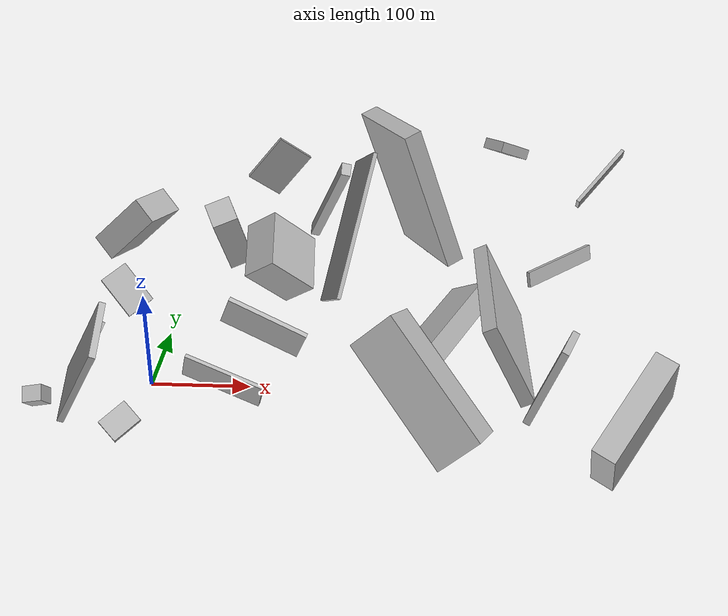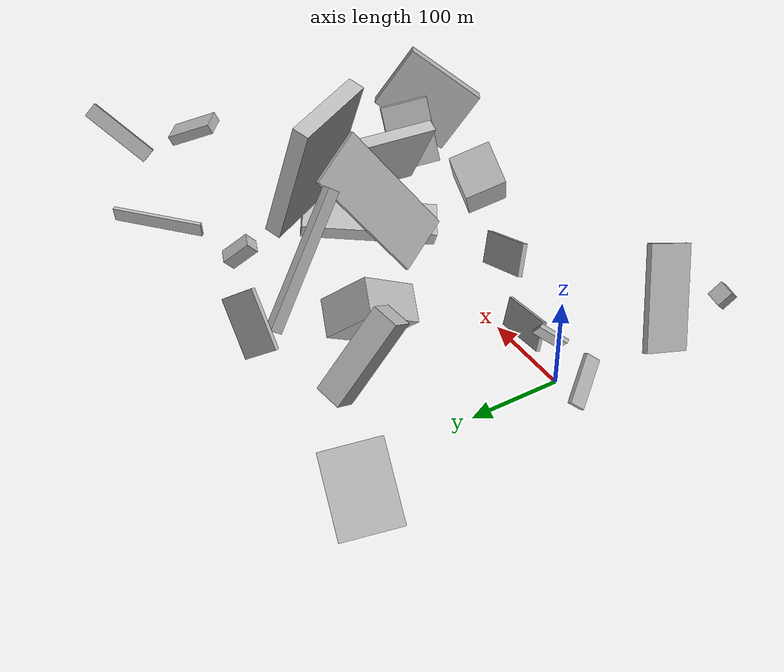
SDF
<sdf version="1.6">
 <world name="default">
  <scene>
   <sky><clouds><speed>12</speed></clouds></sky>
   <ambient>0.4 0.4 0.4 1</ambient>
   <background>0.7 0.7 0.7 1</background>
   <shadows>1</shadows>
  </scene>
  <gravity>0 0 -9.8066</gravity>
  <magnetic_field>6e-06 2.3e-05 -4.2e-05</magnetic_field>
  <physics default="0" name="default_physics" type="ode">
   <ode>
    <solver>
     <type>quick</type>
     <iters>10</iters>
     <sor>1.0</sor>
     <use_dynamic_moi_rescaling>0</use_dynamic_moi_rescaling>
    </solver>
    <constraints>
     <cfm>0</cfm>
     <erp>0.2</erp>
     <contact_max_correcting_vel>100</contact_max_correcting_vel>
     <contact_surface_layer>0.001</contact_surface_layer>
    </constraints>
   </ode>
   <max_step_size>0.004</max_step_size>
   <real_time_factor>1</real_time_factor>
   <real_time_update_rate>250</real_time_update_rate>
  </physics>
  <light name="sun" type="directional">
   <pose>0 0 10 0 0 0</pose>
   <diffuse>0.8 0.8 0.8 1</diffuse>
   <specular>0.2 0.2 0.2 1</specular>
   <attenuation>
    <range>1000</range>
    <constant>0.9</constant>
    <linear>0.01</linear>
    <quadratic>0.001</quadratic>
   </attenuation>
   <direction>-0.5 0.1 -0.9</direction>
  </light>
  <model name="building_1">
   <static>0</static>
   <pose>78.30724151974972 -21.115105571684005 30.394491427988484 2.806932775987539 0.3315284338443673 -1.8775695626805113</pose>
   <link name="link">
    <gravity>0</gravity>
    <pose>0 0 15.5 0 0 0</pose>
    <collision name="collision"><geometry><box><size>4 83 31</size></box></geometry></collision>
    <visual name="visual">
     <cast_shadows>0</cast_shadows>
     <geometry><box><size>4 83 31</size></box></geometry>
     <material>
      <script>
       <uri>model://HANNAS_wall/materials/scripts</uri>
       <uri>model://HANNAS_wall/materials/textures</uri>
       <name>vrc/HANNAS_wall</name>
      </script>
     </material>
    </visual>
   </link>
  </model>
  <model name="building_2">
   <static>0</static>
   <pose>183.42395117659953 113.04460028174043 120.9426850376141 0.6340082878032622 -0.9275001195609783 1.2041407299942801</pose>
   <link name="link">
    <gravity>0</gravity>
    <pose>0 0 31.5 0 0 0</pose>
    <collision name="collision"><geometry><box><size>150 4 63</size></box></geometry></collision>
    <visual name="visual">
     <cast_shadows>0</cast_shadows>
     <geometry><box><size>150 4 63</size></box></geometry>
     <material>
      <script>
       <uri>model://HANNAS_wall/materials/scripts</uri>
       <uri>model://HANNAS_wall/materials/textures</uri>
       <name>vrc/HANNAS_wall</name>
      </script>
     </material>
    </visual>
   </link>
  </model>
  <model name="building_3">
   <static>0</static>
   <pose>440.29469528011447 -129.0177530418953 64.7815952040255 1.8577446078886628 -0.5951080786591255 0.8351374316809398</pose>
   <link name="link">
    <gravity>0</gravity>
    <pose>0 0 11.0 0 0 0</pose>
    <collision name="collision"><geometry><box><size>102 80 22</size></box></geometry></collision>
    <visual name="visual">
     <cast_shadows>0</cast_shadows>
     <geometry><box><size>102 80 22</size></box></geometry>
     <material>
      <script>
       <uri>model://HANNAS_wall/materials/scripts</uri>
       <uri>model://HANNAS_wall/materials/textures</uri>
       <name>vrc/HANNAS_wall</name>
      </script>
     </material>
    </visual>
   </link>
  </model>
  <model name="building_4">
   <static>0</static>
   <pose>445.0057205360156 234.81963963692635 103.8123999210169 0.6169465813245119 0.7970773087032513 1.460772448942396</pose>
   <link name="link">
    <gravity>0</gravity>
    <pose>0 0 40.5 0 0 0</pose>
    <collision name="collision"><geometry><box><size>17 4 81</size></box></geometry></collision>
    <visual name="visual">
     <cast_shadows>0</cast_shadows>
     <geometry><box><size>17 4 81</size></box></geometry>
     <material>
      <script>
       <uri>model://HANNAS_wall/materials/scripts</uri>
       <uri>model://HANNAS_wall/materials/textures</uri>
       <name>vrc/HANNAS_wall</name>
      </script>
     </material>
    </visual>
   </link>
  </model>
  <model name="building_5">
   <static>0</static>
   <pose>280.43282179246273 134.64233629486864 95.6009107095165 -0.06691298186175765 -0.3263578372306168 0.4906746542825626</pose>
   <link name="link">
    <gravity>0</gravity>
    <pose>0 0 75.0 0 0 0</pose>
    <collision name="collision"><geometry><box><size>18 100 150</size></box></geometry></collision>
    <visual name="visual">
     <cast_shadows>0</cast_shadows>
     <geometry><box><size>18 100 150</size></box></geometry>
     <material>
      <script>
       <uri>model://HANNAS_wall/materials/scripts</uri>
       <uri>model://HANNAS_wall/materials/textures</uri>
       <name>vrc/HANNAS_wall</name>
      </script>
     </material>
    </visual>
   </link>
  </model>
  <model name="building_6">
   <static>0</static>
   <pose>-69.27933205908653 30.726597198390387 36.94657774848367 0.8615220720167395 0.5779853271789941 0.161432599546124</pose>
   <link name="link">
    <gravity>0</gravity>
    <pose>0 0 25.5 0 0 0</pose>
    <collision name="collision"><geometry><box><size>5 17 51</size></box></geometry></collision>
    <visual name="visual">
     <cast_shadows>0</cast_shadows>
     <geometry><box><size>5 17 51</size></box></geometry>
     <material>
      <script>
       <uri>model://HANNAS_wall/materials/scripts</uri>
       <uri>model://HANNAS_wall/materials/textures</uri>
       <name>vrc/HANNAS_wall</name>
      </script>
     </material>
    </visual>
   </link>
  </model>
  <model name="building_7">
   <static>0</static>
   <pose>383.2786328418565 -68.87859793087551 65.36249049272143 1.9226776504783476 0.1476907838282584 1.2560085667514995</pose>
   <link name="link">
    <gravity>0</gravity>
    <pose>0 0 3.5 0 0 0</pose>
    <collision name="collision"><geometry><box><size>56 79 7</size></box></geometry></collision>
    <visual name="visual">
     <cast_shadows>0</cast_shadows>
     <geometry><box><size>56 79 7</size></box></geometry>
     <material>
      <script>
       <uri>model://HANNAS_wall/materials/scripts</uri>
       <uri>model://HANNAS_wall/materials/textures</uri>
       <name>vrc/HANNAS_wall</name>
      </script>
     </material>
    </visual>
   </link>
  </model>
  <model name="building_8">
   <static>0</static>
   <pose>286.3573866485451 205.17331453244037 68.37885235264427 1.8608304409425187 0.8406268913107808 -1.7134827109755908</pose>
   <link name="link">
    <gravity>0</gravity>
    <pose>0 0 8.0 0 0 0</pose>
    <collision name="collision"><geometry><box><size>16 34 16</size></box></geometry></collision>
    <visual name="visual">
     <cast_shadows>0</cast_shadows>
     <geometry><box><size>16 34 16</size></box></geometry>
     <material>
      <script>
       <uri>model://HANNAS_wall/materials/scripts</uri>
       <uri>model://HANNAS_wall/materials/textures</uri>
       <name>vrc/HANNAS_wall</name>
      </script>
     </material>
    </visual>
   </link>
  </model>
  <model name="building_9">
   <static>0</static>
   <pose>341.6171455945718 13.88191513765657 69.42986210225476 -0.15888103741269585 -1.1093156313110404 -2.9884704315872486</pose>
   <link name="link">
    <gravity>0</gravity>
    <pose>0 0 7.0 0 0 0</pose>
    <collision name="collision"><geometry><box><size>93 150 14</size></box></geometry></collision>
    <visual name="visual">
     <cast_shadows>0</cast_shadows>
     <geometry><box><size>93 150 14</size></box></geometry>
     <material>
      <script>
       <uri>model://HANNAS_wall/materials/scripts</uri>
       <uri>model://HANNAS_wall/materials/textures</uri>
       <name>vrc/HANNAS_wall</name>
      </script>
     </material>
    </visual>
   </link>
  </model>
  <model name="building_10">
   <static>0</static>
   <pose>147.3532162457037 237.17896157794462 64.70539562295797 -0.695888234415188 -0.2445419096479014 -3.0020948110097376</pose>
   <link name="link">
    <gravity>0</gravity>
    <pose>0 0 75.0 0 0 0</pose>
    <collision name="collision"><geometry><box><size>10 14 150</size></box></geometry></collision>
    <visual name="visual">
     <cast_shadows>0</cast_shadows>
     <geometry><box><size>10 14 150</size></box></geometry>
     <material>
      <script>
       <uri>model://HANNAS_wall/materials/scripts</uri>
       <uri>model://HANNAS_wall/materials/textures</uri>
       <name>vrc/HANNAS_wall</name>
      </script>
     </material>
    </visual>
   </link>
  </model>
  <model name="building_11">
   <static>0</static>
   <pose>433.22484124256476 236.59835235062252 24.58791284733919 3.0302121176757995 -1.3747664896740057 2.427126416641761</pose>
   <link name="link">
    <gravity>0</gravity>
    <pose>0 0 2.0 0 0 0</pose>
    <collision name="collision"><geometry><box><size>18 106 4</size></box></geometry></collision>
    <visual name="visual">
     <cast_shadows>0</cast_shadows>
     <geometry><box><size>18 106 4</size></box></geometry>
     <material>
      <script>
       <uri>model://HANNAS_wall/materials/scripts</uri>
       <uri>model://HANNAS_wall/materials/textures</uri>
       <name>vrc/HANNAS_wall</name>
      </script>
     </material>
    </visual>
   </link>
  </model>
  <model name="building_12">
   <static>0</static>
   <pose>228.78713194146053 -57.18299567616838 105.7902807321343 2.672207143507529 -0.7310879720770722 -0.00912498359995836</pose>
   <link name="link">
    <gravity>0</gravity>
    <pose>0 0 68.0 0 0 0</pose>
    <collision name="collision"><geometry><box><size>48 47 136</size></box></geometry></collision>
    <visual name="visual">
     <cast_shadows>0</cast_shadows>
     <geometry><box><size>48 47 136</size></box></geometry>
     <material>
      <script>
       <uri>model://HANNAS_wall/materials/scripts</uri>
       <uri>model://HANNAS_wall/materials/textures</uri>
       <name>vrc/HANNAS_wall</name>
      </script>
     </material>
    </visual>
   </link>
  </model>
  <model name="building_13">
   <static>0</static>
   <pose>-32.618639703222215 -131.47643311580373 76.71968526728392 -0.8227399186390584 -0.9901462525466037 -0.6132188922821368</pose>
   <link name="link">
    <gravity>0</gravity>
    <pose>0 0 30.0 0 0 0</pose>
    <collision name="collision"><geometry><box><size>107 6 60</size></box></geometry></collision>
    <visual name="visual">
     <cast_shadows>0</cast_shadows>
     <geometry><box><size>107 6 60</size></box></geometry>
     <material>
      <script>
       <uri>model://HANNAS_wall/materials/scripts</uri>
       <uri>model://HANNAS_wall/materials/textures</uri>
       <name>vrc/HANNAS_wall</name>
      </script>
     </material>
    </visual>
   </link>
  </model>
  <model name="building_14">
   <static>0</static>
   <pose>254.26436375024667 -20.83360836770826 31.189669902057222 1.4273928494866486 0.48287170930834156 2.596165446969238</pose>
   <link name="link">
    <gravity>0</gravity>
    <pose>0 0 75.0 0 0 0</pose>
    <collision name="collision"><geometry><box><size>38 24 150</size></box></geometry></collision>
    <visual name="visual">
     <cast_shadows>0</cast_shadows>
     <geometry><box><size>38 24 150</size></box></geometry>
     <material>
      <script>
       <uri>model://HANNAS_wall/materials/scripts</uri>
       <uri>model://HANNAS_wall/materials/textures</uri>
       <name>vrc/HANNAS_wall</name>
      </script>
     </material>
    </visual>
   </link>
  </model>
  <model name="building_15">
   <static>0</static>
   <pose>83.46132920219678 280.16498205839093 101.64644127504695 -0.2533944084884166 -0.6570729403626752 -2.686077685312666</pose>
   <link name="link">
    <gravity>0</gravity>
    <pose>0 0 30.0 0 0 0</pose>
    <collision name="collision"><geometry><box><size>46 4 60</size></box></geometry></collision>
    <visual name="visual">
     <cast_shadows>0</cast_shadows>
     <geometry><box><size>46 4 60</size></box></geometry>
     <material>
      <script>
       <uri>model://HANNAS_wall/materials/scripts</uri>
       <uri>model://HANNAS_wall/materials/textures</uri>
       <name>vrc/HANNAS_wall</name>
      </script>
     </material>
    </visual>
   </link>
  </model>
  <model name="building_16">
   <static>0</static>
   <pose>100.89173647459631 151.65942318035616 62.17740659809368 -0.7468411501043067 -0.7306647329212456 -2.545679756317686</pose>
   <link name="link">
    <gravity>0</gravity>
    <pose>0 0 20.0 0 0 0</pose>
    <collision name="collision"><geometry><box><size>65 65 40</size></box></geometry></collision>
    <visual name="visual">
     <cast_shadows>0</cast_shadows>
     <geometry><box><size>65 65 40</size></box></geometry>
     <material>
      <script>
       <uri>model://HANNAS_wall/materials/scripts</uri>
       <uri>model://HANNAS_wall/materials/textures</uri>
       <name>vrc/HANNAS_wall</name>
      </script>
     </material>
    </visual>
   </link>
  </model>
  <model name="building_17">
   <static>0</static>
   <pose>18.68504839853141 -161.16130925559276 57.1884917466461 0.6281870116921363 -0.7897719802796835 -1.3630498767542134</pose>
   <link name="link">
    <gravity>0</gravity>
    <pose>0 0 11.0 0 0 0</pose>
    <collision name="collision"><geometry><box><size>6 28 22</size></box></geometry></collision>
    <visual name="visual">
     <cast_shadows>0</cast_shadows>
     <geometry><box><size>6 28 22</size></box></geometry>
     <material>
      <script>
       <uri>model://HANNAS_wall/materials/scripts</uri>
       <uri>model://HANNAS_wall/materials/textures</uri>
       <name>vrc/HANNAS_wall</name>
      </script>
     </material>
    </visual>
   </link>
  </model>
  <model name="building_18">
   <static>0</static>
   <pose>154.9532100585105 -21.955438133450258 62.81839866534214 -0.6498371118714356 1.042229146742906 2.288057178477949</pose>
   <link name="link">
    <gravity>0</gravity>
    <pose>0 0 40.5 0 0 0</pose>
    <collision name="collision"><geometry><box><size>34 5 81</size></box></geometry></collision>
    <visual name="visual">
     <cast_shadows>0</cast_shadows>
     <geometry><box><size>34 5 81</size></box></geometry>
     <material>
      <script>
       <uri>model://HANNAS_wall/materials/scripts</uri>
       <uri>model://HANNAS_wall/materials/textures</uri>
       <name>vrc/HANNAS_wall</name>
      </script>
     </material>
    </visual>
   </link>
  </model>
  <model name="building_19">
   <static>0</static>
   <pose>42.3352468120381 185.85215423369542 75.44175165164276 -1.0651097008465553 -0.9171760172728256 -1.6862905554837884</pose>
   <link name="link">
    <gravity>0</gravity>
    <pose>0 0 14.0 0 0 0</pose>
    <collision name="collision"><geometry><box><size>99 30 28</size></box></geometry></collision>
    <visual name="visual">
     <cast_shadows>0</cast_shadows>
     <geometry><box><size>99 30 28</size></box></geometry>
     <material>
      <script>
       <uri>model://HANNAS_wall/materials/scripts</uri>
       <uri>model://HANNAS_wall/materials/textures</uri>
       <name>vrc/HANNAS_wall</name>
      </script>
     </material>
    </visual>
   </link>
  </model>
  <model name="building_20">
   <static>0</static>
   <pose>-41.000794555715295 259.9308557533586 81.5893661401756 -2.930132063010919 -0.7862483871324041 2.6485528111450654</pose>
   <link name="link">
    <gravity>0</gravity>
    <pose>0 0 39.5 0 0 0</pose>
    <collision name="collision"><geometry><box><size>32 60 79</size></box></geometry></collision>
    <visual name="visual">
     <cast_shadows>0</cast_shadows>
     <geometry><box><size>32 60 79</size></box></geometry>
     <material>
      <script>
       <uri>model://HANNAS_wall/materials/scripts</uri>
       <uri>model://HANNAS_wall/materials/textures</uri>
       <name>vrc/HANNAS_wall</name>
      </script>
     </material>
    </visual>
   </link>
  </model>
  <model name="building_21">
   <static>0</static>
   <pose>-23.92949657281197 32.28703740941507 89.13812193568629 0.9062644842371257 -0.40705351301106335 0.6585663502757639</pose>
   <link name="link">
    <gravity>0</gravity>
    <pose>0 0 2.0 0 0 0</pose>
    <collision name="collision"><geometry><box><size>29 45 4</size></box></geometry></collision>
    <visual name="visual">
     <cast_shadows>0</cast_shadows>
     <geometry><box><size>29 45 4</size></box></geometry>
     <material>
      <script>
       <uri>model://HANNAS_wall/materials/scripts</uri>
       <uri>model://HANNAS_wall/materials/textures</uri>
       <name>vrc/HANNAS_wall</name>
      </script>
     </material>
    </visual>
   </link>
  </model>
  <model name="building_22">
   <static>0</static>
   <pose>360.3870439029179 215.22493730212878 181.78796712829507 -3.0877500615075566 -0.43619446575059817 -2.3366240651274452</pose>
   <link name="link">
    <gravity>0</gravity>
    <pose>0 0 5.5 0 0 0</pose>
    <collision name="collision"><geometry><box><size>49 24 11</size></box></geometry></collision>
    <visual name="visual">
     <cast_shadows>0</cast_shadows>
     <geometry><box><size>49 24 11</size></box></geometry>
     <material>
      <script>
       <uri>model://HANNAS_wall/materials/scripts</uri>
       <uri>model://HANNAS_wall/materials/textures</uri>
       <name>vrc/HANNAS_wall</name>
      </script>
     </material>
    </visual>
   </link>
  </model>
  <model name="building_23">
   <static>0</static>
   <pose>-59.16677422752606 -148.85476903252547 91.37211504868355 -2.8679328994445084 -0.7381822147988816 -1.813304166750339</pose>
   <link name="link">
    <gravity>0</gravity>
    <pose>0 0 7.0 0 0 0</pose>
    <collision name="collision"><geometry><box><size>18 17 14</size></box></geometry></collision>
    <visual name="visual">
     <cast_shadows>0</cast_shadows>
     <geometry><box><size>18 17 14</size></box></geometry>
     <material>
      <script>
       <uri>model://HANNAS_wall/materials/scripts</uri>
       <uri>model://HANNAS_wall/materials/textures</uri>
       <name>vrc/HANNAS_wall</name>
      </script>
     </material>
    </visual>
   </link>
  </model>
 </world>
</sdf>
